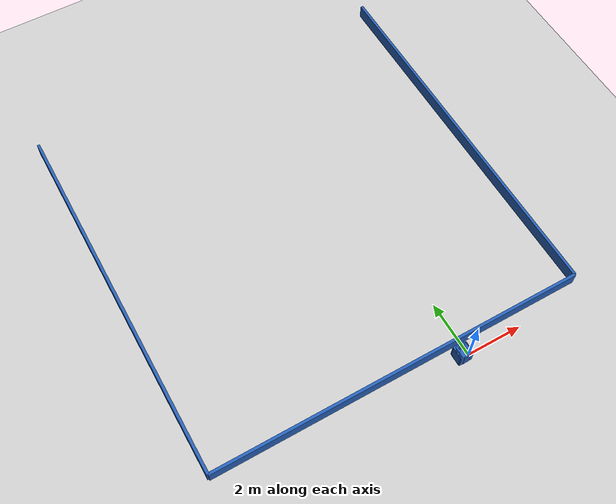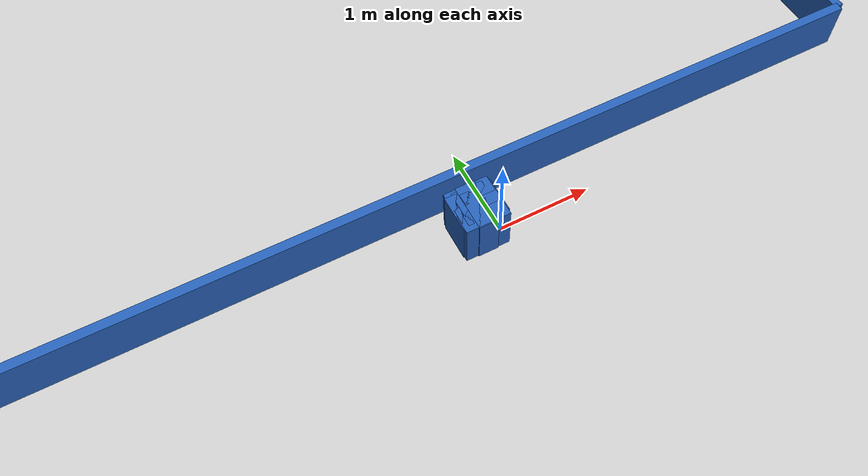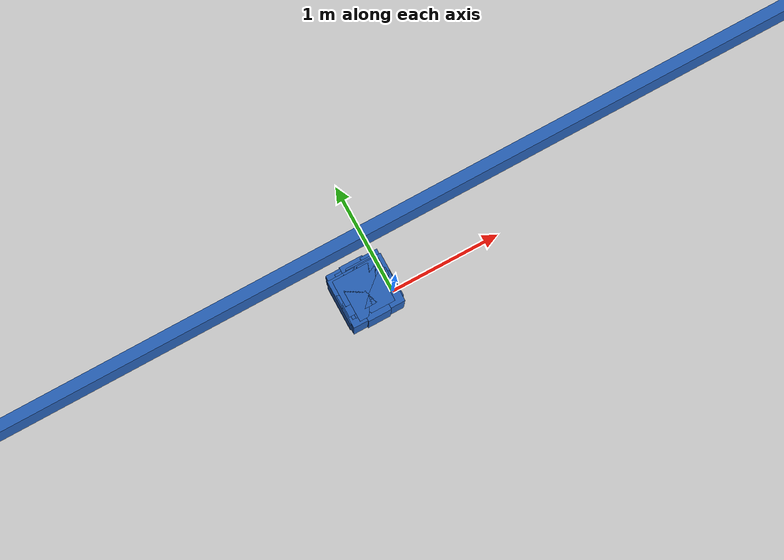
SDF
<?xml version="1.0" ?>
    <sdf version="1.5">
      <world name="default">
        <!-- A global light source -->
        <include>
          <uri>model://sun</uri>
        </include>
        <!-- A ground plane -->
        <include>
          <uri>model://ground_plane</uri>
        </include>

    <model name='libopen_space_final_T2B_116_74'>
      <static>1</static>
      <pose frame=''>-0.225000 0.075000 0.000000 0.000000 0.000000 0.000000</pose>
      <link name='link'>
        <inertial>
          <mass>1</mass>
          <inertia>
            <ixx>0.145833</ixx>
            <ixy>0</ixy>
            <ixz>0</ixz>
            <iyy>0.145833</iyy>
            <iyz>0</iyz>
            <izz>0.125</izz>
          </inertia>
        </inertial>
        <collision name='collision'>
          <geometry>
            <box>
              <size>0.20 0.33 1</size>
            </box>
          </geometry>
          <max_contacts>10</max_contacts>
          <surface>
            <contact>
              <ode/>
            </contact>
            <bounce/>
            <friction>
              <torsional>
                <ode/>
              </torsional>
              <ode/>
            </friction>
          </surface>
        </collision>
        <visual name='visual'>
          <geometry>
            <box>
              <size>0.20 0.33 1</size>
            </box>
          </geometry>
	    <material>
              <ambient>0.152000 0.379000 0.720000 1</ambient>
	      <diffuse>0.152000 0.379000 0.720000 1</diffuse>
          </material>
          <material>
            <script>
              <name>Gazebo/Grey</name>
              <uri>file://media/materials/scripts/gazebo.material</uri>
            </script>
          </material>
        </visual>
        <self_collide>0</self_collide>
        <kinematic>0</kinematic>
        <gravity>1</gravity>
      </link>
      <plugin name='libopen_space_final_T2B_116_74' filename='libopen_space_final_T2B_116_74.so'/>
    </model>

    <model name='libopen_space_final_T2B_51_1'>
      <static>1</static>
      <pose frame=''>-0.225000 0.075000 0.000000 0.000000 0.000000 0.000000</pose>
      <link name='link'>
        <inertial>
          <mass>1</mass>
          <inertia>
            <ixx>0.145833</ixx>
            <ixy>0</ixy>
            <ixz>0</ixz>
            <iyy>0.145833</iyy>
            <iyz>0</iyz>
            <izz>0.125</izz>
          </inertia>
        </inertial>
        <collision name='collision'>
          <geometry>
            <box>
              <size>0.48 0.12 1</size>
            </box>
          </geometry>
          <max_contacts>10</max_contacts>
          <surface>
            <contact>
              <ode/>
            </contact>
            <bounce/>
            <friction>
              <torsional>
                <ode/>
              </torsional>
              <ode/>
            </friction>
          </surface>
        </collision>
        <visual name='visual'>
          <geometry>
            <box>
              <size>0.48 0.12 1</size>
            </box>
          </geometry>
	    <material>
              <ambient>0.152000 0.379000 0.720000 1</ambient>
	      <diffuse>0.152000 0.379000 0.720000 1</diffuse>
          </material>
          <material>
            <script>
              <name>Gazebo/Grey</name>
              <uri>file://media/materials/scripts/gazebo.material</uri>
            </script>
          </material>
        </visual>
        <self_collide>0</self_collide>
        <kinematic>0</kinematic>
        <gravity>1</gravity>
      </link>
      <plugin name='libopen_space_final_T2B_51_1' filename='libopen_space_final_T2B_51_1.so'/>
    </model>

    <model name='libopen_space_final_T2B_119_99'>
      <static>1</static>
      <pose frame=''>-0.225000 0.075000 0.000000 0.000000 0.000000 0.000000</pose>
      <link name='link'>
        <inertial>
          <mass>1</mass>
          <inertia>
            <ixx>0.145833</ixx>
            <ixy>0</ixy>
            <ixz>0</ixz>
            <iyy>0.145833</iyy>
            <iyz>0</iyz>
            <izz>0.125</izz>
          </inertia>
        </inertial>
        <collision name='collision'>
          <geometry>
            <box>
              <size>0.49 0.39 1</size>
            </box>
          </geometry>
          <max_contacts>10</max_contacts>
          <surface>
            <contact>
              <ode/>
            </contact>
            <bounce/>
            <friction>
              <torsional>
                <ode/>
              </torsional>
              <ode/>
            </friction>
          </surface>
        </collision>
        <visual name='visual'>
          <geometry>
            <box>
              <size>0.49 0.39 1</size>
            </box>
          </geometry>
	    <material>
              <ambient>0.152000 0.379000 0.720000 1</ambient>
	      <diffuse>0.152000 0.379000 0.720000 1</diffuse>
          </material>
          <material>
            <script>
              <name>Gazebo/Grey</name>
              <uri>file://media/materials/scripts/gazebo.material</uri>
            </script>
          </material>
        </visual>
        <self_collide>0</self_collide>
        <kinematic>0</kinematic>
        <gravity>1</gravity>
      </link>
      <plugin name='libopen_space_final_T2B_119_99' filename='libopen_space_final_T2B_119_99.so'/>
    </model>

    <model name='libopen_space_final_T2B_90_95'>
      <static>1</static>
      <pose frame=''>-0.225000 0.075000 0.000000 0.000000 0.000000 0.000000</pose>
      <link name='link'>
        <inertial>
          <mass>1</mass>
          <inertia>
            <ixx>0.145833</ixx>
            <ixy>0</ixy>
            <ixz>0</ixz>
            <iyy>0.145833</iyy>
            <iyz>0</iyz>
            <izz>0.125</izz>
          </inertia>
        </inertial>
        <collision name='collision'>
          <geometry>
            <box>
              <size>0.26 0.29 1</size>
            </box>
          </geometry>
          <max_contacts>10</max_contacts>
          <surface>
            <contact>
              <ode/>
            </contact>
            <bounce/>
            <friction>
              <torsional>
                <ode/>
              </torsional>
              <ode/>
            </friction>
          </surface>
        </collision>
        <visual name='visual'>
          <geometry>
            <box>
              <size>0.26 0.29 1</size>
            </box>
          </geometry>
	    <material>
              <ambient>0.152000 0.379000 0.720000 1</ambient>
	      <diffuse>0.152000 0.379000 0.720000 1</diffuse>
          </material>
          <material>
            <script>
              <name>Gazebo/Grey</name>
              <uri>file://media/materials/scripts/gazebo.material</uri>
            </script>
          </material>
        </visual>
        <self_collide>0</self_collide>
        <kinematic>0</kinematic>
        <gravity>1</gravity>
      </link>
      <plugin name='libopen_space_final_T2B_90_95' filename='libopen_space_final_T2B_90_95.so'/>
    </model>

    <model name='libopen_space_final_T2B_122_30'>
      <static>1</static>
      <pose frame=''>-0.225000 0.075000 0.000000 0.000000 0.000000 0.000000</pose>
      <link name='link'>
        <inertial>
          <mass>1</mass>
          <inertia>
            <ixx>0.145833</ixx>
            <ixy>0</ixy>
            <ixz>0</ixz>
            <iyy>0.145833</iyy>
            <iyz>0</iyz>
            <izz>0.125</izz>
          </inertia>
        </inertial>
        <collision name='collision'>
          <geometry>
            <box>
              <size>0.21 0.50 1</size>
            </box>
          </geometry>
          <max_contacts>10</max_contacts>
          <surface>
            <contact>
              <ode/>
            </contact>
            <bounce/>
            <friction>
              <torsional>
                <ode/>
              </torsional>
              <ode/>
            </friction>
          </surface>
        </collision>
        <visual name='visual'>
          <geometry>
            <box>
              <size>0.21 0.50 1</size>
            </box>
          </geometry>
	    <material>
              <ambient>0.152000 0.379000 0.720000 1</ambient>
	      <diffuse>0.152000 0.379000 0.720000 1</diffuse>
          </material>
          <material>
            <script>
              <name>Gazebo/Grey</name>
              <uri>file://media/materials/scripts/gazebo.material</uri>
            </script>
          </material>
        </visual>
        <self_collide>0</self_collide>
        <kinematic>0</kinematic>
        <gravity>1</gravity>
      </link>
      <plugin name='libopen_space_final_T2B_122_30' filename='libopen_space_final_T2B_122_30.so'/>
    </model>

    <model name='libopen_space_final_T2B_96_0'>
      <static>1</static>
      <pose frame=''>-0.225000 0.075000 0.000000 0.000000 0.000000 0.000000</pose>
      <link name='link'>
        <inertial>
          <mass>1</mass>
          <inertia>
            <ixx>0.145833</ixx>
            <ixy>0</ixy>
            <ixz>0</ixz>
            <iyy>0.145833</iyy>
            <iyz>0</iyz>
            <izz>0.125</izz>
          </inertia>
        </inertial>
        <collision name='collision'>
          <geometry>
            <box>
              <size>0.42 0.35 1</size>
            </box>
          </geometry>
          <max_contacts>10</max_contacts>
          <surface>
            <contact>
              <ode/>
            </contact>
            <bounce/>
            <friction>
              <torsional>
                <ode/>
              </torsional>
              <ode/>
            </friction>
          </surface>
        </collision>
        <visual name='visual'>
          <geometry>
            <box>
              <size>0.42 0.35 1</size>
            </box>
          </geometry>
	    <material>
              <ambient>0.152000 0.379000 0.720000 1</ambient>
	      <diffuse>0.152000 0.379000 0.720000 1</diffuse>
          </material>
          <material>
            <script>
              <name>Gazebo/Grey</name>
              <uri>file://media/materials/scripts/gazebo.material</uri>
            </script>
          </material>
        </visual>
        <self_collide>0</self_collide>
        <kinematic>0</kinematic>
        <gravity>1</gravity>
      </link>
      <plugin name='libopen_space_final_T2B_96_0' filename='libopen_space_final_T2B_96_0.so'/>
    </model>

    <model name='libopen_space_final_T2B_57_87'>
      <static>1</static>
      <pose frame=''>-0.225000 0.075000 0.000000 0.000000 0.000000 0.000000</pose>
      <link name='link'>
        <inertial>
          <mass>1</mass>
          <inertia>
            <ixx>0.145833</ixx>
            <ixy>0</ixy>
            <ixz>0</ixz>
            <iyy>0.145833</iyy>
            <iyz>0</iyz>
            <izz>0.125</izz>
          </inertia>
        </inertial>
        <collision name='collision'>
          <geometry>
            <box>
              <size>0.33 0.40 1</size>
            </box>
          </geometry>
          <max_contacts>10</max_contacts>
          <surface>
            <contact>
              <ode/>
            </contact>
            <bounce/>
            <friction>
              <torsional>
                <ode/>
              </torsional>
              <ode/>
            </friction>
          </surface>
        </collision>
        <visual name='visual'>
          <geometry>
            <box>
              <size>0.33 0.40 1</size>
            </box>
          </geometry>
	    <material>
              <ambient>0.152000 0.379000 0.720000 1</ambient>
	      <diffuse>0.152000 0.379000 0.720000 1</diffuse>
          </material>
          <material>
            <script>
              <name>Gazebo/Grey</name>
              <uri>file://media/materials/scripts/gazebo.material</uri>
            </script>
          </material>
        </visual>
        <self_collide>0</self_collide>
        <kinematic>0</kinematic>
        <gravity>1</gravity>
      </link>
      <plugin name='libopen_space_final_T2B_57_87' filename='libopen_space_final_T2B_57_87.so'/>
    </model>

    <model name='libopen_space_final_T2B_105_38'>
      <static>1</static>
      <pose frame=''>-0.225000 0.075000 0.000000 0.000000 0.000000 0.000000</pose>
      <link name='link'>
        <inertial>
          <mass>1</mass>
          <inertia>
            <ixx>0.145833</ixx>
            <ixy>0</ixy>
            <ixz>0</ixz>
            <iyy>0.145833</iyy>
            <iyz>0</iyz>
            <izz>0.125</izz>
          </inertia>
        </inertial>
        <collision name='collision'>
          <geometry>
            <box>
              <size>0.45 0.29 1</size>
            </box>
          </geometry>
          <max_contacts>10</max_contacts>
          <surface>
            <contact>
              <ode/>
            </contact>
            <bounce/>
            <friction>
              <torsional>
                <ode/>
              </torsional>
              <ode/>
            </friction>
          </surface>
        </collision>
        <visual name='visual'>
          <geometry>
            <box>
              <size>0.45 0.29 1</size>
            </box>
          </geometry>
	    <material>
              <ambient>0.152000 0.379000 0.720000 1</ambient>
	      <diffuse>0.152000 0.379000 0.720000 1</diffuse>
          </material>
          <material>
            <script>
              <name>Gazebo/Grey</name>
              <uri>file://media/materials/scripts/gazebo.material</uri>
            </script>
          </material>
        </visual>
        <self_collide>0</self_collide>
        <kinematic>0</kinematic>
        <gravity>1</gravity>
      </link>
      <plugin name='libopen_space_final_T2B_105_38' filename='libopen_space_final_T2B_105_38.so'/>
    </model>

    <model name='libopen_space_final_T2B_73_9'>
      <static>1</static>
      <pose frame=''>-0.225000 0.075000 0.000000 0.000000 0.000000 0.000000</pose>
      <link name='link'>
        <inertial>
          <mass>1</mass>
          <inertia>
            <ixx>0.145833</ixx>
            <ixy>0</ixy>
            <ixz>0</ixz>
            <iyy>0.145833</iyy>
            <iyz>0</iyz>
            <izz>0.125</izz>
          </inertia>
        </inertial>
        <collision name='collision'>
          <geometry>
            <box>
              <size>0.33 0.43 1</size>
            </box>
          </geometry>
          <max_contacts>10</max_contacts>
          <surface>
            <contact>
              <ode/>
            </contact>
            <bounce/>
            <friction>
              <torsional>
                <ode/>
              </torsional>
              <ode/>
            </friction>
          </surface>
        </collision>
        <visual name='visual'>
          <geometry>
            <box>
              <size>0.33 0.43 1</size>
            </box>
          </geometry>
	    <material>
              <ambient>0.152000 0.379000 0.720000 1</ambient>
	      <diffuse>0.152000 0.379000 0.720000 1</diffuse>
          </material>
          <material>
            <script>
              <name>Gazebo/Grey</name>
              <uri>file://media/materials/scripts/gazebo.material</uri>
            </script>
          </material>
        </visual>
        <self_collide>0</self_collide>
        <kinematic>0</kinematic>
        <gravity>1</gravity>
      </link>
      <plugin name='libopen_space_final_T2B_73_9' filename='libopen_space_final_T2B_73_9.so'/>
    </model>

    <model name='libopen_space_final_T2B_105_8'>
      <static>1</static>
      <pose frame=''>-0.225000 0.075000 0.000000 0.000000 0.000000 0.000000</pose>
      <link name='link'>
        <inertial>
          <mass>1</mass>
          <inertia>
            <ixx>0.145833</ixx>
            <ixy>0</ixy>
            <ixz>0</ixz>
            <iyy>0.145833</iyy>
            <iyz>0</iyz>
            <izz>0.125</izz>
          </inertia>
        </inertial>
        <collision name='collision'>
          <geometry>
            <box>
              <size>0.36 0.36 1</size>
            </box>
          </geometry>
          <max_contacts>10</max_contacts>
          <surface>
            <contact>
              <ode/>
            </contact>
            <bounce/>
            <friction>
              <torsional>
                <ode/>
              </torsional>
              <ode/>
            </friction>
          </surface>
        </collision>
        <visual name='visual'>
          <geometry>
            <box>
              <size>0.36 0.36 1</size>
            </box>
          </geometry>
	    <material>
              <ambient>0.152000 0.379000 0.720000 1</ambient>
	      <diffuse>0.152000 0.379000 0.720000 1</diffuse>
          </material>
          <material>
            <script>
              <name>Gazebo/Grey</name>
              <uri>file://media/materials/scripts/gazebo.material</uri>
            </script>
          </material>
        </visual>
        <self_collide>0</self_collide>
        <kinematic>0</kinematic>
        <gravity>1</gravity>
      </link>
      <plugin name='libopen_space_final_T2B_105_8' filename='libopen_space_final_T2B_105_8.so'/>
    </model>

    <model name='libopen_space_final_T2B_115_72'>
      <static>1</static>
      <pose frame=''>-0.225000 0.075000 0.000000 0.000000 0.000000 0.000000</pose>
      <link name='link'>
        <inertial>
          <mass>1</mass>
          <inertia>
            <ixx>0.145833</ixx>
            <ixy>0</ixy>
            <ixz>0</ixz>
            <iyy>0.145833</iyy>
            <iyz>0</iyz>
            <izz>0.125</izz>
          </inertia>
        </inertial>
        <collision name='collision'>
          <geometry>
            <box>
              <size>0.39 0.22 1</size>
            </box>
          </geometry>
          <max_contacts>10</max_contacts>
          <surface>
            <contact>
              <ode/>
            </contact>
            <bounce/>
            <friction>
              <torsional>
                <ode/>
              </torsional>
              <ode/>
            </friction>
          </surface>
        </collision>
        <visual name='visual'>
          <geometry>
            <box>
              <size>0.39 0.22 1</size>
            </box>
          </geometry>
	    <material>
              <ambient>0.152000 0.379000 0.720000 1</ambient>
	      <diffuse>0.152000 0.379000 0.720000 1</diffuse>
          </material>
          <material>
            <script>
              <name>Gazebo/Grey</name>
              <uri>file://media/materials/scripts/gazebo.material</uri>
            </script>
          </material>
        </visual>
        <self_collide>0</self_collide>
        <kinematic>0</kinematic>
        <gravity>1</gravity>
      </link>
      <plugin name='libopen_space_final_T2B_115_72' filename='libopen_space_final_T2B_115_72.so'/>
    </model>

    <model name='libopen_space_final_T2B_96_80'>
      <static>1</static>
      <pose frame=''>-0.225000 0.075000 0.000000 0.000000 0.000000 0.000000</pose>
      <link name='link'>
        <inertial>
          <mass>1</mass>
          <inertia>
            <ixx>0.145833</ixx>
            <ixy>0</ixy>
            <ixz>0</ixz>
            <iyy>0.145833</iyy>
            <iyz>0</iyz>
            <izz>0.125</izz>
          </inertia>
        </inertial>
        <collision name='collision'>
          <geometry>
            <box>
              <size>0.47 0.48 1</size>
            </box>
          </geometry>
          <max_contacts>10</max_contacts>
          <surface>
            <contact>
              <ode/>
            </contact>
            <bounce/>
            <friction>
              <torsional>
                <ode/>
              </torsional>
              <ode/>
            </friction>
          </surface>
        </collision>
        <visual name='visual'>
          <geometry>
            <box>
              <size>0.47 0.48 1</size>
            </box>
          </geometry>
	    <material>
              <ambient>0.152000 0.379000 0.720000 1</ambient>
	      <diffuse>0.152000 0.379000 0.720000 1</diffuse>
          </material>
          <material>
            <script>
              <name>Gazebo/Grey</name>
              <uri>file://media/materials/scripts/gazebo.material</uri>
            </script>
          </material>
        </visual>
        <self_collide>0</self_collide>
        <kinematic>0</kinematic>
        <gravity>1</gravity>
      </link>
      <plugin name='libopen_space_final_T2B_96_80' filename='libopen_space_final_T2B_96_80.so'/>
    </model>

    <model name='libopen_space_final_T2B_66_3'>
      <static>1</static>
      <pose frame=''>-0.225000 0.075000 0.000000 0.000000 0.000000 0.000000</pose>
      <link name='link'>
        <inertial>
          <mass>1</mass>
          <inertia>
            <ixx>0.145833</ixx>
            <ixy>0</ixy>
            <ixz>0</ixz>
            <iyy>0.145833</iyy>
            <iyz>0</iyz>
            <izz>0.125</izz>
          </inertia>
        </inertial>
        <collision name='collision'>
          <geometry>
            <box>
              <size>0.27 0.30 1</size>
            </box>
          </geometry>
          <max_contacts>10</max_contacts>
          <surface>
            <contact>
              <ode/>
            </contact>
            <bounce/>
            <friction>
              <torsional>
                <ode/>
              </torsional>
              <ode/>
            </friction>
          </surface>
        </collision>
        <visual name='visual'>
          <geometry>
            <box>
              <size>0.27 0.30 1</size>
            </box>
          </geometry>
	    <material>
              <ambient>0.152000 0.379000 0.720000 1</ambient>
	      <diffuse>0.152000 0.379000 0.720000 1</diffuse>
          </material>
          <material>
            <script>
              <name>Gazebo/Grey</name>
              <uri>file://media/materials/scripts/gazebo.material</uri>
            </script>
          </material>
        </visual>
        <self_collide>0</self_collide>
        <kinematic>0</kinematic>
        <gravity>1</gravity>
      </link>
      <plugin name='libopen_space_final_T2B_66_3' filename='libopen_space_final_T2B_66_3.so'/>
    </model>

    <model name='libopen_space_final_T2B_90_15'>
      <static>1</static>
      <pose frame=''>-0.225000 0.075000 0.000000 0.000000 0.000000 0.000000</pose>
      <link name='link'>
        <inertial>
          <mass>1</mass>
          <inertia>
            <ixx>0.145833</ixx>
            <ixy>0</ixy>
            <ixz>0</ixz>
            <iyy>0.145833</iyy>
            <iyz>0</iyz>
            <izz>0.125</izz>
          </inertia>
        </inertial>
        <collision name='collision'>
          <geometry>
            <box>
              <size>0.35 0.38 1</size>
            </box>
          </geometry>
          <max_contacts>10</max_contacts>
          <surface>
            <contact>
              <ode/>
            </contact>
            <bounce/>
            <friction>
              <torsional>
                <ode/>
              </torsional>
              <ode/>
            </friction>
          </surface>
        </collision>
        <visual name='visual'>
          <geometry>
            <box>
              <size>0.35 0.38 1</size>
            </box>
          </geometry>
	    <material>
              <ambient>0.152000 0.379000 0.720000 1</ambient>
	      <diffuse>0.152000 0.379000 0.720000 1</diffuse>
          </material>
          <material>
            <script>
              <name>Gazebo/Grey</name>
              <uri>file://media/materials/scripts/gazebo.material</uri>
            </script>
          </material>
        </visual>
        <self_collide>0</self_collide>
        <kinematic>0</kinematic>
        <gravity>1</gravity>
      </link>
      <plugin name='libopen_space_final_T2B_90_15' filename='libopen_space_final_T2B_90_15.so'/>
    </model>

        <model name='bottom_wall'>
          <static>1</static>
          <pose frame=''>-2.25 0.5 0.000000 0.000000 0.000000 1.57079632</pose>
          <link name='link'>
            <inertial>
            <mass>1</mass>
            <inertia>
              <ixx>0.145833</ixx>
              <ixy>0</ixy>
              <ixz>0</ixz>
              <iyy>0.145833</iyy>
              <iyz>0</iyz>
              <izz>0.125</izz>
            </inertia>
            </inertial>
            <collision name='collision'>
            <geometry>
              <box>
              <size>0.1 13.5 1</size>
              </box>
            </geometry>
            <max_contacts>10</max_contacts>
            <surface>
              <contact>
              <ode/>
              </contact>
              <bounce/>
              <friction>
              <torsional>
                <ode/>
              </torsional>
              <ode/>
              </friction>
            </surface>
            </collision>
            <visual name='visual'>
            <geometry>
              <box>
              <size>0.1 13.5 1</size>
              </box>
            </geometry>
            <material>
              <ambient>0.152000 0.379000 0.720000 1</ambient>
            <diffuse>0.152000 0.379000 0.720000 1</diffuse>
            </material>
            <material>
              <script>
              <name>Gazebo/Grey</name>
              <uri>file://media/materials/scripts/gazebo.material</uri>
              </script>
            </material>
            </visual>
            <self_collide>0</self_collide>
            <kinematic>0</kinematic>
            <gravity>1</gravity>
          </link>
        </model>

        <model name='left_wall'>
          <static>1</static>
          <pose frame=''>-9 7.25 0.000000 0.000000 0.000000 0.000000</pose>
          <link name='link'>
            <inertial>
            <mass>1</mass>
            <inertia>
              <ixx>0.145833</ixx>
              <ixy>0</ixy>
              <ixz>0</ixz>
              <iyy>0.145833</iyy>
              <iyz>0</iyz>
              <izz>0.125</izz>
            </inertia>
            </inertial>
            <collision name='collision'>
            <geometry>
              <box>
              <size>0.1 13.5 1</size>
              </box>
            </geometry>
            <max_contacts>10</max_contacts>
            <surface>
              <contact>
              <ode/>
              </contact>
              <bounce/>
              <friction>
              <torsional>
                <ode/>
              </torsional>
              <ode/>
              </friction>
            </surface>
            </collision>
            <visual name='visual'>
            <geometry>
              <box>
              <size>0.1 13.5 1</size>
              </box>
            </geometry>
            <material>
              <ambient>0.152000 0.379000 0.720000 1</ambient>
            <diffuse>0.152000 0.379000 0.720000 1</diffuse>
            </material>
            <material>
              <script>
              <name>Gazebo/Grey</name>
              <uri>file://media/materials/scripts/gazebo.material</uri>
              </script>
            </material>
            </visual>
            <self_collide>0</self_collide>
            <kinematic>0</kinematic>
            <gravity>1</gravity>
          </link>
        </model>

        <model name='right_wall'>
          <static>1</static>
          <pose frame=''>4.5 7.25 0.000000 0.000000 0.000000 0.000000</pose>
          <link name='link'>
            <inertial>
            <mass>1</mass>
            <inertia>
              <ixx>0.145833</ixx>
              <ixy>0</ixy>
              <ixz>0</ixz>
              <iyy>0.145833</iyy>
              <iyz>0</iyz>
              <izz>0.125</izz>
            </inertia>
            </inertial>
            <collision name='collision'>
            <geometry>
              <box>
              <size>0.1 13.5 1</size>
              </box>
            </geometry>
            <max_contacts>10</max_contacts>
            <surface>
              <contact>
              <ode/>
              </contact>
              <bounce/>
              <friction>
              <torsional>
                <ode/>
              </torsional>
              <ode/>
              </friction>
            </surface>
            </collision>
            <visual name='visual'>
            <geometry>
              <box>
              <size>0.1 13.5 1</size>
              </box>
            </geometry>
            <material>
              <ambient>0.152000 0.379000 0.720000 1</ambient>
            <diffuse>0.152000 0.379000 0.720000 1</diffuse>
            </material>
            <material>
              <script>
              <name>Gazebo/Grey</name>
              <uri>file://media/materials/scripts/gazebo.material</uri>
              </script>
            </material>
            </visual>
            <self_collide>0</self_collide>
            <kinematic>0</kinematic>
            <gravity>1</gravity>
          </link>
        </model>

      </world>
    </sdf>"
